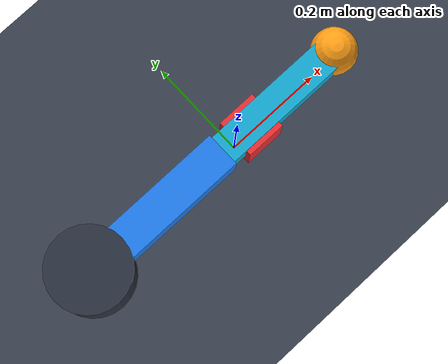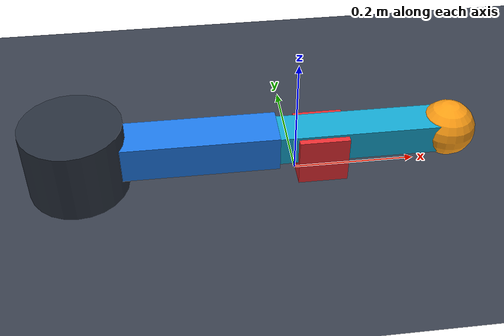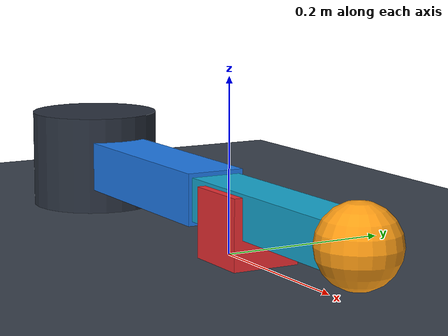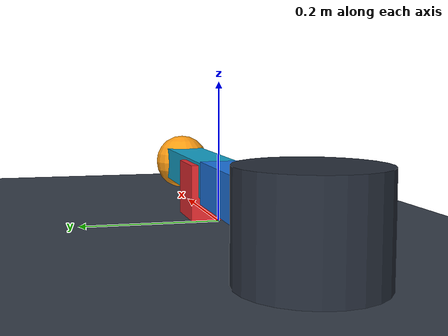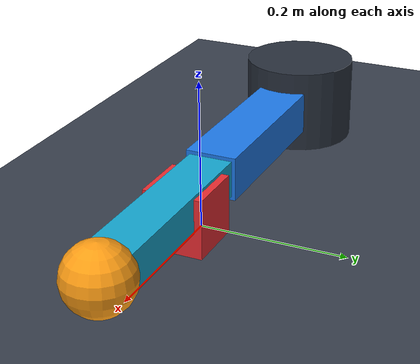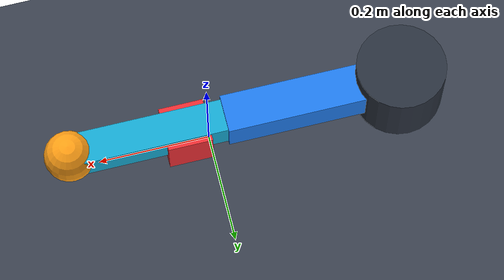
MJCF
<mujoco model="planar_push">
  <compiler angle="radian" autolimits="true"/>
  <option timestep="0.005" gravity="0 0 -9.81" integrator="implicitfast" solver="Newton" iterations="20" cone="pyramidal"/>
  <size njmax="128" nconmax="32"/>

  <default>
    <joint damping="1.2" armature="0.02" limited="true"/>
    <geom friction="0.9 0.01 0.0001" condim="3" contype="1" conaffinity="1"/>
    <motor ctrllimited="true" ctrlrange="-8 8"/>
  </default>

  <worldbody>
    <light name="key" pos="0 0 2" dir="0 0 -1"/>
    <geom name="table" type="plane" size="1.2 0.8 0.05" rgba="0.22 0.25 0.30 1" friction="1.1 0.02 0.001"/>

    <body name="base" pos="-0.35 0 0.06">
      <geom name="base_geom" type="cylinder" size="0.08 0.06" rgba="0.16 0.19 0.24 1" contype="0" conaffinity="0"/>
      <body name="link1" pos="0 0 0">
        <joint name="shoulder" type="hinge" axis="0 0 1" range="-2.7 2.7"/>
        <geom name="link1_geom" type="box" pos="0.16 0 0" size="0.16 0.035 0.03" rgba="0.12 0.48 0.92 1"/>
        <body name="link2" pos="0.32 0 0">
          <joint name="elbow" type="hinge" axis="0 0 1" range="-2.8 2.8"/>
          <geom name="link2_geom" type="box" pos="0.14 0 0" size="0.14 0.03 0.025" rgba="0.08 0.66 0.82 1"/>
          <body name="pusher" pos="0.28 0 0">
            <geom name="pusher_geom" type="sphere" size="0.045" rgba="1.0 0.62 0.08 1" friction="1.2 0.02 0.001"/>
          </body>
        </body>
      </body>
    </body>

    <body name="cube" pos="0.04 0 0.041">
      <freejoint name="cube_free"/>
      <geom name="cube_geom" type="box" size="0.04 0.04 0.04" density="650" rgba="0.92 0.18 0.20 1" friction="0.85 0.02 0.001"/>
    </body>
  </worldbody>

  <actuator>
    <motor name="shoulder_motor" joint="shoulder" gear="1"/>
    <motor name="elbow_motor" joint="elbow" gear="1"/>
  </actuator>
</mujoco>
